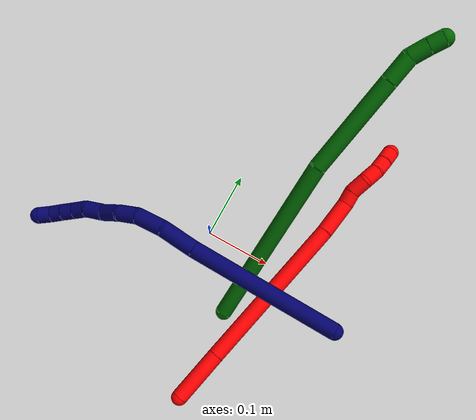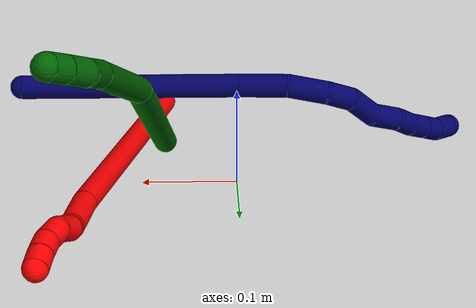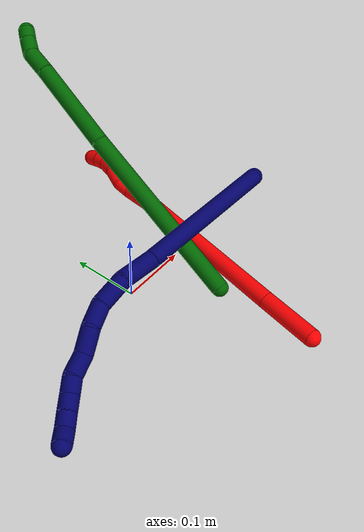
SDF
<sdf version="1.7">
 <world name="default">
  <model name="photoneo_s_sensor">
   <static>1</static>
   <pose>0 0 2 1.57079 1.57079 3.14159</pose>
   <link name="link">
    <inertial><mass>0.1</mass></inertial>
    <sensor name="sensor" type="depth">
     <update_rate>30</update_rate>
     <camera>
      <horizontal_fov>1.22</horizontal_fov>
      <image><width>1920</width><height>1200</height><format>B8G8R8</format></image>
      <clip><near>0.1</near><far>4</far></clip>
      <depth_camera><output>points</output></depth_camera>
     </camera>
     <plugin name="camera_plugin" filename="libgazebo_ros_depth_camera.so">
      <baseline>0.2</baseline>
      <alwaysOn>1</alwaysOn>
      <updateRate>0.0</updateRate>
      <cameraName>camera_ir</cameraName>
      <imageTopicName>/camera/color/image_raw</imageTopicName>
      <cameraInfoTopicName>/camera/color/camera_info</cameraInfoTopicName>
      <depthImageTopicName>/camera/depth/image_raw</depthImageTopicName>
      <depthImageCameraInfoTopicName>/camera/depth/camera_info</depthImageCameraInfoTopicName>
      <pointCloudTopicName>/camera/depth/points</pointCloudTopicName>
      <frameName>fr_optical</frameName>
      <pointCloudCutoff>0.1</pointCloudCutoff>
      <pointCloudCutoffMax>2.0</pointCloudCutoffMax>
      <distortionK1>0</distortionK1>
      <distortionK2>0</distortionK2>
      <distortionK3>0</distortionK3>
      <distortionT1>0</distortionT1>
      <distortionT2>0</distortionT2>
      <CxPrime>0</CxPrime>
      <Cx>0</Cx>
      <Cy>0</Cy>
      <focalLength>0</focalLength>
      <hackBaseline>0</hackBaseline>
     </plugin>
    </sensor>
   </link>
  </model>
  <model name="bin">
   <static>1</static>
   <link name="bottom">
    <collision name="collision-bottom">
     <pose>0 0 -0.01 0 -0 0</pose>
     <geometry><box><size>0.8 0.6 0.02</size></box></geometry>
     <surface>
      <friction><ode><mu>100</mu><mu2>100</mu2></ode></friction>
      <contact><collide_bitmask>65535</collide_bitmask></contact>
     </surface>
    </collision>
   </link>
   <link name="west_wall">
    <collision name="collision-west_wall">
     <pose>-0.41 0 0.1 0 -0 0</pose>
     <geometry><box><size>0.02 0.6 0.2</size></box></geometry>
     <surface>
      <friction><ode><mu>100</mu><mu2>100</mu2></ode></friction>
      <contact><collide_bitmask>65535</collide_bitmask></contact>
     </surface>
    </collision>
   </link>
   <link name="east_wall">
    <collision name="collision-east_wall">
     <pose>0.41 0 0.1 0 -0 0</pose>
     <geometry><box><size>0.02 0.6 0.2</size></box></geometry>
     <surface>
      <friction><ode><mu>100</mu><mu2>100</mu2></ode></friction>
      <contact><collide_bitmask>65535</collide_bitmask></contact>
     </surface>
    </collision>
   </link>
   <link name="south_wall">
    <collision name="collision-south_wall">
     <pose>0 -0.31 0.1 0 -0 0</pose>
     <geometry><box><size>0.8 0.02 0.2</size></box></geometry>
     <surface>
      <friction><ode><mu>100</mu><mu2>100</mu2></ode></friction>
      <contact><collide_bitmask>65535</collide_bitmask></contact>
     </surface>
    </collision>
   </link>
   <link name="north_wall">
    <collision name="collision-north_wall">
     <pose>0 0.31 0.1 0 -0 0</pose>
     <geometry><box><size>0.8 0.02 0.2</size></box></geometry>
     <surface>
      <friction><ode><mu>100</mu><mu2>100</mu2></ode></friction>
      <contact><collide_bitmask>65535</collide_bitmask></contact>
     </surface>
    </collision>
   </link>
  </model>
  <model name="2">
   <static>0</static>
   <link name="2">
    <collision name="collision-cylinder-e_1_1_4">
     <pose>0.009067 0.040051 0.004728 -1.45329 0.22114 -0.196739</pose>
     <geometry><cylinder><radius>0.0125</radius><length>0.082672</length></cylinder></geometry>
     <surface>
      <friction><ode><mu>1.16</mu><mu2>1.16</mu2><slip1>0</slip1><slip2>0</slip2></ode></friction>
      <contact><ode><kp>1e+06</kp><kd>1</kd><max_vel>0</max_vel><min_depth>0.001</min_depth></ode></contact>
     </surface>
    </collision>
    <visual name="visual-cylinder-e_1_1_4">
     <pose>0.009067 0.040051 0.004728 -1.45329 0.22114 -0.196739</pose>
     <geometry><cylinder><radius>0.0125</radius><length>0.082672</length></cylinder></geometry>
     <material><ambient>1 0 0 1</ambient></material>
    </visual>
    <collision name="collision-cylinder-e_2_4_5">
     <pose>0.046518 0.201089 0.024256 -1.44907 0.228798 -0.202706</pose>
     <geometry><cylinder><radius>0.0125</radius><length>0.250301</length></cylinder></geometry>
     <surface>
      <friction><ode><mu>1.16</mu><mu2>1.16</mu2><slip1>0</slip1><slip2>0</slip2></ode></friction>
      <contact><ode><kp>1e+06</kp><kd>1</kd><max_vel>0</max_vel><min_depth>0.001</min_depth></ode></contact>
     </surface>
    </collision>
    <visual name="visual-cylinder-e_2_4_5">
     <pose>0.046518 0.201089 0.024256 -1.44907 0.228798 -0.202706</pose>
     <geometry><cylinder><radius>0.0125</radius><length>0.250301</length></cylinder></geometry>
     <material><ambient>1 0 0 1</ambient></material>
    </visual>
    <collision name="collision-cylinder-e_3_5_6">
     <pose>0.07938 0.349285 0.040847 -1.50508 0.162727 -0.152411</pose>
     <geometry><cylinder><radius>0.0125</radius><length>0.055265</length></cylinder></geometry>
     <surface>
      <friction><ode><mu>1.16</mu><mu2>1.16</mu2><slip1>0</slip1><slip2>0</slip2></ode></friction>
      <contact><ode><kp>1e+06</kp><kd>1</kd><max_vel>0</max_vel><min_depth>0.001</min_depth></ode></contact>
     </surface>
    </collision>
    <visual name="visual-cylinder-e_3_5_6">
     <pose>0.07938 0.349285 0.040847 -1.50508 0.162727 -0.152411</pose>
     <geometry><cylinder><radius>0.0125</radius><length>0.055265</length></cylinder></geometry>
     <material><ambient>1 0 0 1</ambient></material>
    </visual>
    <collision name="collision-cylinder-e_4_6_7">
     <pose>0.083411 0.386434 0.046717 -1.18136 -0.041423 0.027778</pose>
     <geometry><cylinder><radius>0.0125</radius><length>0.021508</length></cylinder></geometry>
     <surface>
      <friction><ode><mu>1.16</mu><mu2>1.16</mu2><slip1>0</slip1><slip2>0</slip2></ode></friction>
      <contact><ode><kp>1e+06</kp><kd>1</kd><max_vel>0</max_vel><min_depth>0.001</min_depth></ode></contact>
     </surface>
    </collision>
    <visual name="visual-cylinder-e_4_6_7">
     <pose>0.083411 0.386434 0.046717 -1.18136 -0.041423 0.027778</pose>
     <geometry><cylinder><radius>0.0125</radius><length>0.021508</length></cylinder></geometry>
     <material><ambient>1 0 0 1</ambient></material>
    </visual>
    <collision name="collision-cylinder-e_5_7_8">
     <pose>0.086671 0.407433 0.056881 -1.06785 0.285488 -0.16953</pose>
     <geometry><cylinder><radius>0.0125</radius><length>0.026309</length></cylinder></geometry>
     <surface>
      <friction><ode><mu>1.16</mu><mu2>1.16</mu2><slip1>0</slip1><slip2>0</slip2></ode></friction>
      <contact><ode><kp>1e+06</kp><kd>1</kd><max_vel>0</max_vel><min_depth>0.001</min_depth></ode></contact>
     </surface>
    </collision>
    <visual name="visual-cylinder-e_5_7_8">
     <pose>0.086671 0.407433 0.056881 -1.06785 0.285488 -0.16953</pose>
     <geometry><cylinder><radius>0.0125</radius><length>0.026309</length></cylinder></geometry>
     <material><ambient>1 0 0 1</ambient></material>
    </visual>
    <collision name="collision-cylinder-e_6_8_9">
     <pose>0.09471 0.429474 0.063514 -1.52083 0.375526 -0.357615</pose>
     <geometry><cylinder><radius>0.0125</radius><length>0.023639</length></cylinder></geometry>
     <surface>
      <friction><ode><mu>1.16</mu><mu2>1.16</mu2><slip1>0</slip1><slip2>0</slip2></ode></friction>
      <contact><ode><kp>1e+06</kp><kd>1</kd><max_vel>0</max_vel><min_depth>0.001</min_depth></ode></contact>
     </surface>
    </collision>
    <visual name="visual-cylinder-e_6_8_9">
     <pose>0.09471 0.429474 0.063514 -1.52083 0.375526 -0.357615</pose>
     <geometry><cylinder><radius>0.0125</radius><length>0.023639</length></cylinder></geometry>
     <material><ambient>1 0 0 1</ambient></material>
    </visual>
    <collision name="collision-cylinder-e_7_9_10">
     <pose>0.101258 0.45027 0.063094 -1.66923 0.220751 -0.24341</pose>
     <geometry><cylinder><radius>0.0125</radius><length>0.020214</length></cylinder></geometry>
     <surface>
      <friction><ode><mu>1.16</mu><mu2>1.16</mu2><slip1>0</slip1><slip2>0</slip2></ode></friction>
      <contact><ode><kp>1e+06</kp><kd>1</kd><max_vel>0</max_vel><min_depth>0.001</min_depth></ode></contact>
     </surface>
    </collision>
    <visual name="visual-cylinder-e_7_9_10">
     <pose>0.101258 0.45027 0.063094 -1.66923 0.220751 -0.24341</pose>
     <geometry><cylinder><radius>0.0125</radius><length>0.020214</length></cylinder></geometry>
     <material><ambient>1 0 0 1</ambient></material>
    </visual>
    <collision name="collision-cylinder-e_8_10_2">
     <pose>0.105482 0.469734 0.060185 -1.76914 0.201485 -0.245602</pose>
     <geometry><cylinder><radius>0.0125</radius><length>0.020093</length></cylinder></geometry>
     <surface>
      <friction><ode><mu>1.16</mu><mu2>1.16</mu2><slip1>0</slip1><slip2>0</slip2></ode></friction>
      <contact><ode><kp>1e+06</kp><kd>1</kd><max_vel>0</max_vel><min_depth>0.001</min_depth></ode></contact>
     </surface>
    </collision>
    <visual name="visual-cylinder-e_8_10_2">
     <pose>0.105482 0.469734 0.060185 -1.76914 0.201485 -0.245602</pose>
     <geometry><cylinder><radius>0.0125</radius><length>0.020093</length></cylinder></geometry>
     <material><ambient>1 0 0 1</ambient></material>
    </visual>
    <collision name="collision-sphere-2">
     <pose>0.107492 0.479385 0.058245 0 -0 0</pose>
     <geometry><sphere><radius>0.0125</radius></sphere></geometry>
     <surface>
      <friction><ode><mu>1.16</mu><mu2>1.16</mu2><slip1>0</slip1><slip2>0</slip2></ode></friction>
      <contact><ode><kp>1e+06</kp><kd>1</kd><max_vel>0</max_vel><min_depth>0.001</min_depth></ode></contact>
     </surface>
    </collision>
    <visual name="visual-sphere-2">
     <pose>0.107492 0.479385 0.058245 0 -0 0</pose>
     <geometry><sphere><radius>0.0125</radius></sphere></geometry>
     <material><ambient>1 0 0 1</ambient></material>
    </visual>
    <collision name="collision-sphere-10">
     <pose>0.103471 0.460084 0.062124 0 -0 0</pose>
     <geometry><sphere><radius>0.0125</radius></sphere></geometry>
     <surface>
      <friction><ode><mu>1.16</mu><mu2>1.16</mu2><slip1>0</slip1><slip2>0</slip2></ode></friction>
      <contact><ode><kp>1e+06</kp><kd>1</kd><max_vel>0</max_vel><min_depth>0.001</min_depth></ode></contact>
     </surface>
    </collision>
    <visual name="visual-sphere-10">
     <pose>0.103471 0.460084 0.062124 0 -0 0</pose>
     <geometry><sphere><radius>0.0125</radius></sphere></geometry>
     <material><ambient>1 0 0 1</ambient></material>
    </visual>
    <collision name="collision-sphere-9">
     <pose>0.099045 0.440456 0.064063 0 -0 0</pose>
     <geometry><sphere><radius>0.0125</radius></sphere></geometry>
     <surface>
      <friction><ode><mu>1.16</mu><mu2>1.16</mu2><slip1>0</slip1><slip2>0</slip2></ode></friction>
      <contact><ode><kp>1e+06</kp><kd>1</kd><max_vel>0</max_vel><min_depth>0.001</min_depth></ode></contact>
     </surface>
    </collision>
    <visual name="visual-sphere-9">
     <pose>0.099045 0.440456 0.064063 0 -0 0</pose>
     <geometry><sphere><radius>0.0125</radius></sphere></geometry>
     <material><ambient>1 0 0 1</ambient></material>
    </visual>
    <collision name="collision-sphere-4">
     <pose>0.018133 0.080102 0.009456 0 -0 0</pose>
     <geometry><sphere><radius>0.0125</radius></sphere></geometry>
     <surface>
      <friction><ode><mu>1.16</mu><mu2>1.16</mu2><slip1>0</slip1><slip2>0</slip2></ode></friction>
      <contact><ode><kp>1e+06</kp><kd>1</kd><max_vel>0</max_vel><min_depth>0.001</min_depth></ode></contact>
     </surface>
    </collision>
    <visual name="visual-sphere-4">
     <pose>0.018133 0.080102 0.009456 0 -0 0</pose>
     <geometry><sphere><radius>0.0125</radius></sphere></geometry>
     <material><ambient>1 0 0 1</ambient></material>
    </visual>
    <collision name="collision-sphere-1">
     <geometry><sphere><radius>0.0125</radius></sphere></geometry>
     <surface>
      <friction><ode><mu>1.16</mu><mu2>1.16</mu2><slip1>0</slip1><slip2>0</slip2></ode></friction>
      <contact><ode><kp>1e+06</kp><kd>1</kd><max_vel>0</max_vel><min_depth>0.001</min_depth></ode></contact>
     </surface>
    </collision>
    <visual name="visual-sphere-1">
     <geometry><sphere><radius>0.0125</radius></sphere></geometry>
     <material><ambient>1 0 0 1</ambient></material>
    </visual>
    <collision name="collision-sphere-8">
     <pose>0.090375 0.418492 0.062965 0 -0 0</pose>
     <geometry><sphere><radius>0.0125</radius></sphere></geometry>
     <surface>
      <friction><ode><mu>1.16</mu><mu2>1.16</mu2><slip1>0</slip1><slip2>0</slip2></ode></friction>
      <contact><ode><kp>1e+06</kp><kd>1</kd><max_vel>0</max_vel><min_depth>0.001</min_depth></ode></contact>
     </surface>
    </collision>
    <visual name="visual-sphere-8">
     <pose>0.090375 0.418492 0.062965 0 -0 0</pose>
     <geometry><sphere><radius>0.0125</radius></sphere></geometry>
     <material><ambient>1 0 0 1</ambient></material>
    </visual>
    <collision name="collision-sphere-5">
     <pose>0.074903 0.322076 0.039057 0 -0 0</pose>
     <geometry><sphere><radius>0.0125</radius></sphere></geometry>
     <surface>
      <friction><ode><mu>1.16</mu><mu2>1.16</mu2><slip1>0</slip1><slip2>0</slip2></ode></friction>
      <contact><ode><kp>1e+06</kp><kd>1</kd><max_vel>0</max_vel><min_depth>0.001</min_depth></ode></contact>
     </surface>
    </collision>
    <visual name="visual-sphere-5">
     <pose>0.074903 0.322076 0.039057 0 -0 0</pose>
     <geometry><sphere><radius>0.0125</radius></sphere></geometry>
     <material><ambient>1 0 0 1</ambient></material>
    </visual>
    <collision name="collision-sphere-6">
     <pose>0.083857 0.376493 0.042638 0 -0 0</pose>
     <geometry><sphere><radius>0.0125</radius></sphere></geometry>
     <surface>
      <friction><ode><mu>1.16</mu><mu2>1.16</mu2><slip1>0</slip1><slip2>0</slip2></ode></friction>
      <contact><ode><kp>1e+06</kp><kd>1</kd><max_vel>0</max_vel><min_depth>0.001</min_depth></ode></contact>
     </surface>
    </collision>
    <visual name="visual-sphere-6">
     <pose>0.083857 0.376493 0.042638 0 -0 0</pose>
     <geometry><sphere><radius>0.0125</radius></sphere></geometry>
     <material><ambient>1 0 0 1</ambient></material>
    </visual>
    <collision name="collision-sphere-7">
     <pose>0.082966 0.396374 0.050797 0 -0 0</pose>
     <geometry><sphere><radius>0.0125</radius></sphere></geometry>
     <surface>
      <friction><ode><mu>1.16</mu><mu2>1.16</mu2><slip1>0</slip1><slip2>0</slip2></ode></friction>
      <contact><ode><kp>1e+06</kp><kd>1</kd><max_vel>0</max_vel><min_depth>0.001</min_depth></ode></contact>
     </surface>
    </collision>
    <visual name="visual-sphere-7">
     <pose>0.082966 0.396374 0.050797 0 -0 0</pose>
     <geometry><sphere><radius>0.0125</radius></sphere></geometry>
     <material><ambient>1 0 0 1</ambient></material>
    </visual>
    <inertial>
     <pose>0.054519 0.24134 0.030414 0 -0 0</pose>
     <mass>0.5</mass>
     <inertia>
      <ixx>0.001065</ixx>
      <ixy>0</ixy>
      <ixz>0</ixz>
      <iyy>-7e-06</iyy>
      <iyz>0</iyz>
      <izz>-0.001656</izz>
     </inertia>
    </inertial>
   </link>
   <pose>0.080801 -0.238747 0.011498 -0.079346 0.14991 0.00954</pose>
  </model>
  <model name="6">
   <static>0</static>
   <link name="6">
    <collision name="collision-cylinder-e_1_1_4">
     <pose>0.027621 0.050304 0.121241 -0.393296 0.207398 -0.041461</pose>
     <geometry><cylinder><radius>0.0125</radius><length>0.268274</length></cylinder></geometry>
     <surface>
      <friction><ode><mu>1.16</mu><mu2>1.16</mu2><slip1>0</slip1><slip2>0</slip2></ode></friction>
      <contact><ode><kp>1e+06</kp><kd>1</kd><max_vel>0</max_vel><min_depth>0.001</min_depth></ode></contact>
     </surface>
    </collision>
    <visual name="visual-cylinder-e_1_1_4">
     <pose>0.027621 0.050304 0.121241 -0.393296 0.207398 -0.041461</pose>
     <geometry><cylinder><radius>0.0125</radius><length>0.268274</length></cylinder></geometry>
     <material><ambient>0 0.392157 0.003922 1</ambient></material>
    </visual>
    <collision name="collision-cylinder-e_2_4_5">
     <pose>0.07468 0.137338 0.3014 -0.557449 0.272984 -0.078569</pose>
     <geometry><cylinder><radius>0.0125</radius><length>0.144197</length></cylinder></geometry>
     <surface>
      <friction><ode><mu>1.16</mu><mu2>1.16</mu2><slip1>0</slip1><slip2>0</slip2></ode></friction>
      <contact><ode><kp>1e+06</kp><kd>1</kd><max_vel>0</max_vel><min_depth>0.001</min_depth></ode></contact>
     </surface>
    </collision>
    <visual name="visual-cylinder-e_2_4_5">
     <pose>0.07468 0.137338 0.3014 -0.557449 0.272984 -0.078569</pose>
     <geometry><cylinder><radius>0.0125</radius><length>0.144197</length></cylinder></geometry>
     <material><ambient>0 0.392157 0.003922 1</ambient></material>
    </visual>
    <collision name="collision-cylinder-e_3_5_6">
     <pose>0.098974 0.185262 0.375696 -0.629211 0.249929 -0.081711</pose>
     <geometry><cylinder><radius>0.0125</radius><length>0.039264</length></cylinder></geometry>
     <surface>
      <friction><ode><mu>1.16</mu><mu2>1.16</mu2><slip1>0</slip1><slip2>0</slip2></ode></friction>
      <contact><ode><kp>1e+06</kp><kd>1</kd><max_vel>0</max_vel><min_depth>0.001</min_depth></ode></contact>
     </surface>
    </collision>
    <visual name="visual-cylinder-e_3_5_6">
     <pose>0.098974 0.185262 0.375696 -0.629211 0.249929 -0.081711</pose>
     <geometry><cylinder><radius>0.0125</radius><length>0.039264</length></cylinder></geometry>
     <material><ambient>0 0.392157 0.003922 1</ambient></material>
    </visual>
    <collision name="collision-cylinder-e_4_6_7">
     <pose>0.11171 0.20378 0.399226 -0.732001 0.623556 -0.245802</pose>
     <geometry><cylinder><radius>0.0125</radius><length>0.026994</length></cylinder></geometry>
     <surface>
      <friction><ode><mu>1.16</mu><mu2>1.16</mu2><slip1>0</slip1><slip2>0</slip2></ode></friction>
      <contact><ode><kp>1e+06</kp><kd>1</kd><max_vel>0</max_vel><min_depth>0.001</min_depth></ode></contact>
     </surface>
    </collision>
    <visual name="visual-cylinder-e_4_6_7">
     <pose>0.11171 0.20378 0.399226 -0.732001 0.623556 -0.245802</pose>
     <geometry><cylinder><radius>0.0125</radius><length>0.026994</length></cylinder></geometry>
     <material><ambient>0 0.392157 0.003922 1</ambient></material>
    </visual>
    <collision name="collision-cylinder-e_5_7_2">
     <pose>0.126204 0.216896 0.413363 -0.768924 0.670889 -0.280251</pose>
     <geometry><cylinder><radius>0.0125</radius><length>0.021271</length></cylinder></geometry>
     <surface>
      <friction><ode><mu>1.16</mu><mu2>1.16</mu2><slip1>0</slip1><slip2>0</slip2></ode></friction>
      <contact><ode><kp>1e+06</kp><kd>1</kd><max_vel>0</max_vel><min_depth>0.001</min_depth></ode></contact>
     </surface>
    </collision>
    <visual name="visual-cylinder-e_5_7_2">
     <pose>0.126204 0.216896 0.413363 -0.768924 0.670889 -0.280251</pose>
     <geometry><cylinder><radius>0.0125</radius><length>0.021271</length></cylinder></geometry>
     <material><ambient>0 0.392157 0.003922 1</ambient></material>
    </visual>
    <collision name="collision-sphere-2">
     <pose>0.132815 0.222688 0.419349 0 -0 0</pose>
     <geometry><sphere><radius>0.0125</radius></sphere></geometry>
     <surface>
      <friction><ode><mu>1.16</mu><mu2>1.16</mu2><slip1>0</slip1><slip2>0</slip2></ode></friction>
      <contact><ode><kp>1e+06</kp><kd>1</kd><max_vel>0</max_vel><min_depth>0.001</min_depth></ode></contact>
     </surface>
    </collision>
    <visual name="visual-sphere-2">
     <pose>0.132815 0.222688 0.419349 0 -0 0</pose>
     <geometry><sphere><radius>0.0125</radius></sphere></geometry>
     <material><ambient>0 0.392157 0.003922 1</ambient></material>
    </visual>
    <collision name="collision-sphere-7">
     <pose>0.119592 0.211103 0.407376 0 -0 0</pose>
     <geometry><sphere><radius>0.0125</radius></sphere></geometry>
     <surface>
      <friction><ode><mu>1.16</mu><mu2>1.16</mu2><slip1>0</slip1><slip2>0</slip2></ode></friction>
      <contact><ode><kp>1e+06</kp><kd>1</kd><max_vel>0</max_vel><min_depth>0.001</min_depth></ode></contact>
     </surface>
    </collision>
    <visual name="visual-sphere-7">
     <pose>0.119592 0.211103 0.407376 0 -0 0</pose>
     <geometry><sphere><radius>0.0125</radius></sphere></geometry>
     <material><ambient>0 0.392157 0.003922 1</ambient></material>
    </visual>
    <collision name="collision-sphere-6">
     <pose>0.103829 0.196457 0.391076 0 -0 0</pose>
     <geometry><sphere><radius>0.0125</radius></sphere></geometry>
     <surface>
      <friction><ode><mu>1.16</mu><mu2>1.16</mu2><slip1>0</slip1><slip2>0</slip2></ode></friction>
      <contact><ode><kp>1e+06</kp><kd>1</kd><max_vel>0</max_vel><min_depth>0.001</min_depth></ode></contact>
     </surface>
    </collision>
    <visual name="visual-sphere-6">
     <pose>0.103829 0.196457 0.391076 0 -0 0</pose>
     <geometry><sphere><radius>0.0125</radius></sphere></geometry>
     <material><ambient>0 0.392157 0.003922 1</ambient></material>
    </visual>
    <collision name="collision-sphere-5">
     <pose>0.094118 0.174068 0.360317 0 -0 0</pose>
     <geometry><sphere><radius>0.0125</radius></sphere></geometry>
     <surface>
      <friction><ode><mu>1.16</mu><mu2>1.16</mu2><slip1>0</slip1><slip2>0</slip2></ode></friction>
      <contact><ode><kp>1e+06</kp><kd>1</kd><max_vel>0</max_vel><min_depth>0.001</min_depth></ode></contact>
     </surface>
    </collision>
    <visual name="visual-sphere-5">
     <pose>0.094118 0.174068 0.360317 0 -0 0</pose>
     <geometry><sphere><radius>0.0125</radius></sphere></geometry>
     <material><ambient>0 0.392157 0.003922 1</ambient></material>
    </visual>
    <collision name="collision-sphere-1">
     <geometry><sphere><radius>0.0125</radius></sphere></geometry>
     <surface>
      <friction><ode><mu>1.16</mu><mu2>1.16</mu2><slip1>0</slip1><slip2>0</slip2></ode></friction>
      <contact><ode><kp>1e+06</kp><kd>1</kd><max_vel>0</max_vel><min_depth>0.001</min_depth></ode></contact>
     </surface>
    </collision>
    <visual name="visual-sphere-1">
     <geometry><sphere><radius>0.0125</radius></sphere></geometry>
     <material><ambient>0 0.392157 0.003922 1</ambient></material>
    </visual>
    <collision name="collision-sphere-4">
     <pose>0.055242 0.100609 0.242482 0 -0 0</pose>
     <geometry><sphere><radius>0.0125</radius></sphere></geometry>
     <surface>
      <friction><ode><mu>1.16</mu><mu2>1.16</mu2><slip1>0</slip1><slip2>0</slip2></ode></friction>
      <contact><ode><kp>1e+06</kp><kd>1</kd><max_vel>0</max_vel><min_depth>0.001</min_depth></ode></contact>
     </surface>
    </collision>
    <visual name="visual-sphere-4">
     <pose>0.055242 0.100609 0.242482 0 -0 0</pose>
     <geometry><sphere><radius>0.0125</radius></sphere></geometry>
     <material><ambient>0 0.392157 0.003922 1</ambient></material>
    </visual>
    <inertial>
     <pose>0.055529 0.101375 0.220614 0 -0 0</pose>
     <mass>0.5</mass>
     <inertia>
      <ixx>0.001762</ixx>
      <ixy>0</ixy>
      <ixz>0</ixz>
      <iyy>0.001659</iyy>
      <iyz>0</iyz>
      <izz>-0.001117</izz>
     </inertia>
    </inertial>
   </link>
   <pose>0.077116 -0.095205 0.012161 -0.693471 -0.404189 -0.064555</pose>
  </model>
  <model name="7">
   <static>0</static>
   <link name="7">
    <collision name="collision-cylinder-e_1_1_4">
     <pose>-0.114625 0.004489 -0.002103 -2.00895 -1.52758 1.96945</pose>
     <geometry><cylinder><radius>0.0125</radius><length>0.229464</length></cylinder></geometry>
     <surface>
      <friction><ode><mu>1.16</mu><mu2>1.16</mu2><slip1>0</slip1><slip2>0</slip2></ode></friction>
      <contact><ode><kp>1e+06</kp><kd>1</kd><max_vel>0</max_vel><min_depth>0.001</min_depth></ode></contact>
     </surface>
    </collision>
    <visual name="visual-cylinder-e_1_1_4">
     <pose>-0.114625 0.004489 -0.002103 -2.00895 -1.52758 1.96945</pose>
     <geometry><cylinder><radius>0.0125</radius><length>0.229464</length></cylinder></geometry>
     <material><ambient>0.003922 0 0.403922 1</ambient></material>
    </visual>
    <collision name="collision-cylinder-e_2_4_5">
     <pose>-0.255031 0.01164 -0.004717 -1.76039 -1.46601 1.65645</pose>
     <geometry><cylinder><radius>0.0125</radius><length>0.051848</length></cylinder></geometry>
     <surface>
      <friction><ode><mu>1.16</mu><mu2>1.16</mu2><slip1>0</slip1><slip2>0</slip2></ode></friction>
      <contact><ode><kp>1e+06</kp><kd>1</kd><max_vel>0</max_vel><min_depth>0.001</min_depth></ode></contact>
     </surface>
    </collision>
    <visual name="visual-cylinder-e_2_4_5">
     <pose>-0.255031 0.01164 -0.004717 -1.76039 -1.46601 1.65645</pose>
     <geometry><cylinder><radius>0.0125</radius><length>0.051848</length></cylinder></geometry>
     <material><ambient>0.003922 0 0.403922 1</ambient></material>
    </visual>
    <collision name="collision-cylinder-e_3_5_6">
     <pose>-0.301822 0.013477 -0.009869 2.96538 -1.35007 -2.92178</pose>
     <geometry><cylinder><radius>0.0125</radius><length>0.043064</length></cylinder></geometry>
     <surface>
      <friction><ode><mu>1.16</mu><mu2>1.16</mu2><slip1>0</slip1><slip2>0</slip2></ode></friction>
      <contact><ode><kp>1e+06</kp><kd>1</kd><max_vel>0</max_vel><min_depth>0.001</min_depth></ode></contact>
     </surface>
    </collision>
    <visual name="visual-cylinder-e_3_5_6">
     <pose>-0.301822 0.013477 -0.009869 2.96538 -1.35007 -2.92178</pose>
     <geometry><cylinder><radius>0.0125</radius><length>0.043064</length></cylinder></geometry>
     <material><ambient>0.003922 0 0.403922 1</ambient></material>
    </visual>
    <collision name="collision-cylinder-e_4_6_7">
     <pose>-0.336463 0.007858 -0.019206 2.34596 -1.11341 -1.95381</pose>
     <geometry><cylinder><radius>0.0125</radius><length>0.030385</length></cylinder></geometry>
     <surface>
      <friction><ode><mu>1.16</mu><mu2>1.16</mu2><slip1>0</slip1><slip2>0</slip2></ode></friction>
      <contact><ode><kp>1e+06</kp><kd>1</kd><max_vel>0</max_vel><min_depth>0.001</min_depth></ode></contact>
     </surface>
    </collision>
    <visual name="visual-cylinder-e_4_6_7">
     <pose>-0.336463 0.007858 -0.019206 2.34596 -1.11341 -1.95381</pose>
     <geometry><cylinder><radius>0.0125</radius><length>0.030385</length></cylinder></geometry>
     <material><ambient>0.003922 0 0.403922 1</ambient></material>
    </visual>
    <collision name="collision-cylinder-e_5_7_8">
     <pose>-0.362384 -0.002837 -0.033956 2.61075 -0.811768 -2.01358</pose>
     <geometry><cylinder><radius>0.0125</radius><length>0.033882</length></cylinder></geometry>
     <surface>
      <friction><ode><mu>1.16</mu><mu2>1.16</mu2><slip1>0</slip1><slip2>0</slip2></ode></friction>
      <contact><ode><kp>1e+06</kp><kd>1</kd><max_vel>0</max_vel><min_depth>0.001</min_depth></ode></contact>
     </surface>
    </collision>
    <visual name="visual-cylinder-e_5_7_8">
     <pose>-0.362384 -0.002837 -0.033956 2.61075 -0.811768 -2.01358</pose>
     <geometry><cylinder><radius>0.0125</radius><length>0.033882</length></cylinder></geometry>
     <material><ambient>0.003922 0 0.403922 1</ambient></material>
    </visual>
    <collision name="collision-cylinder-e_6_8_9">
     <pose>-0.388374 -0.012934 -0.04748 2.26184 -1.19254 -1.92895</pose>
     <geometry><cylinder><radius>0.0125</radius><length>0.029481</length></cylinder></geometry>
     <surface>
      <friction><ode><mu>1.16</mu><mu2>1.16</mu2><slip1>0</slip1><slip2>0</slip2></ode></friction>
      <contact><ode><kp>1e+06</kp><kd>1</kd><max_vel>0</max_vel><min_depth>0.001</min_depth></ode></contact>
     </surface>
    </collision>
    <visual name="visual-cylinder-e_6_8_9">
     <pose>-0.388374 -0.012934 -0.04748 2.26184 -1.19254 -1.92895</pose>
     <geometry><cylinder><radius>0.0125</radius><length>0.029481</length></cylinder></geometry>
     <material><ambient>0.003922 0 0.403922 1</ambient></material>
    </visual>
    <collision name="collision-cylinder-e_7_9_10">
     <pose>-0.40998 -0.022639 -0.055167 2.22418 -0.850544 -1.48439</pose>
     <geometry><cylinder><radius>0.0125</radius><length>0.021042</length></cylinder></geometry>
     <surface>
      <friction><ode><mu>1.16</mu><mu2>1.16</mu2><slip1>0</slip1><slip2>0</slip2></ode></friction>
      <contact><ode><kp>1e+06</kp><kd>1</kd><max_vel>0</max_vel><min_depth>0.001</min_depth></ode></contact>
     </surface>
    </collision>
    <visual name="visual-cylinder-e_7_9_10">
     <pose>-0.40998 -0.022639 -0.055167 2.22418 -0.850544 -1.48439</pose>
     <geometry><cylinder><radius>0.0125</radius><length>0.021042</length></cylinder></geometry>
     <material><ambient>0.003922 0 0.403922 1</ambient></material>
    </visual>
    <collision name="collision-cylinder-e_8_10_11">
     <pose>-0.42598 -0.033761 -0.062028 2.0108 -0.91677 -1.32198</pose>
     <geometry><cylinder><radius>0.0125</radius><length>0.020391</length></cylinder></geometry>
     <surface>
      <friction><ode><mu>1.16</mu><mu2>1.16</mu2><slip1>0</slip1><slip2>0</slip2></ode></friction>
      <contact><ode><kp>1e+06</kp><kd>1</kd><max_vel>0</max_vel><min_depth>0.001</min_depth></ode></contact>
     </surface>
    </collision>
    <visual name="visual-cylinder-e_8_10_11">
     <pose>-0.42598 -0.033761 -0.062028 2.0108 -0.91677 -1.32198</pose>
     <geometry><cylinder><radius>0.0125</radius><length>0.020391</length></cylinder></geometry>
     <material><ambient>0.003922 0 0.403922 1</ambient></material>
    </visual>
    <collision name="collision-cylinder-e_9_11_12">
     <pose>-0.44199 -0.04509 -0.067399 2.01625 -0.896057 -1.30237</pose>
     <geometry><cylinder><radius>0.0125</radius><length>0.020281</length></cylinder></geometry>
     <surface>
      <friction><ode><mu>1.16</mu><mu2>1.16</mu2><slip1>0</slip1><slip2>0</slip2></ode></friction>
      <contact><ode><kp>1e+06</kp><kd>1</kd><max_vel>0</max_vel><min_depth>0.001</min_depth></ode></contact>
     </surface>
    </collision>
    <visual name="visual-cylinder-e_9_11_12">
     <pose>-0.44199 -0.04509 -0.067399 2.01625 -0.896057 -1.30237</pose>
     <geometry><cylinder><radius>0.0125</radius><length>0.020281</length></cylinder></geometry>
     <material><ambient>0.003922 0 0.403922 1</ambient></material>
    </visual>
    <collision name="collision-cylinder-e_10_12_2">
     <pose>-0.458233 -0.056445 -0.069392 1.44086 -0.971491 -0.867946</pose>
     <geometry><cylinder><radius>0.0125</radius><length>0.020162</length></cylinder></geometry>
     <surface>
      <friction><ode><mu>1.16</mu><mu2>1.16</mu2><slip1>0</slip1><slip2>0</slip2></ode></friction>
      <contact><ode><kp>1e+06</kp><kd>1</kd><max_vel>0</max_vel><min_depth>0.001</min_depth></ode></contact>
     </surface>
    </collision>
    <visual name="visual-cylinder-e_10_12_2">
     <pose>-0.458233 -0.056445 -0.069392 1.44086 -0.971491 -0.867946</pose>
     <geometry><cylinder><radius>0.0125</radius><length>0.020162</length></cylinder></geometry>
     <material><ambient>0.003922 0 0.403922 1</ambient></material>
    </visual>
    <collision name="collision-sphere-2">
     <pose>-0.466557 -0.062083 -0.068655 0 -0 0</pose>
     <geometry><sphere><radius>0.0125</radius></sphere></geometry>
     <surface>
      <friction><ode><mu>1.16</mu><mu2>1.16</mu2><slip1>0</slip1><slip2>0</slip2></ode></friction>
      <contact><ode><kp>1e+06</kp><kd>1</kd><max_vel>0</max_vel><min_depth>0.001</min_depth></ode></contact>
     </surface>
    </collision>
    <visual name="visual-sphere-2">
     <pose>-0.466557 -0.062083 -0.068655 0 -0 0</pose>
     <geometry><sphere><radius>0.0125</radius></sphere></geometry>
     <material><ambient>0.003922 0 0.403922 1</ambient></material>
    </visual>
    <collision name="collision-sphere-12">
     <pose>-0.449908 -0.050806 -0.070129 0 -0 0</pose>
     <geometry><sphere><radius>0.0125</radius></sphere></geometry>
     <surface>
      <friction><ode><mu>1.16</mu><mu2>1.16</mu2><slip1>0</slip1><slip2>0</slip2></ode></friction>
      <contact><ode><kp>1e+06</kp><kd>1</kd><max_vel>0</max_vel><min_depth>0.001</min_depth></ode></contact>
     </surface>
    </collision>
    <visual name="visual-sphere-12">
     <pose>-0.449908 -0.050806 -0.070129 0 -0 0</pose>
     <geometry><sphere><radius>0.0125</radius></sphere></geometry>
     <material><ambient>0.003922 0 0.403922 1</ambient></material>
    </visual>
    <collision name="collision-sphere-11">
     <pose>-0.434071 -0.039373 -0.06467 0 -0 0</pose>
     <geometry><sphere><radius>0.0125</radius></sphere></geometry>
     <surface>
      <friction><ode><mu>1.16</mu><mu2>1.16</mu2><slip1>0</slip1><slip2>0</slip2></ode></friction>
      <contact><ode><kp>1e+06</kp><kd>1</kd><max_vel>0</max_vel><min_depth>0.001</min_depth></ode></contact>
     </surface>
    </collision>
    <visual name="visual-sphere-11">
     <pose>-0.434071 -0.039373 -0.06467 0 -0 0</pose>
     <geometry><sphere><radius>0.0125</radius></sphere></geometry>
     <material><ambient>0.003922 0 0.403922 1</ambient></material>
    </visual>
    <collision name="collision-sphere-10">
     <pose>-0.417888 -0.028149 -0.059386 0 -0 0</pose>
     <geometry><sphere><radius>0.0125</radius></sphere></geometry>
     <surface>
      <friction><ode><mu>1.16</mu><mu2>1.16</mu2><slip1>0</slip1><slip2>0</slip2></ode></friction>
      <contact><ode><kp>1e+06</kp><kd>1</kd><max_vel>0</max_vel><min_depth>0.001</min_depth></ode></contact>
     </surface>
    </collision>
    <visual name="visual-sphere-10">
     <pose>-0.417888 -0.028149 -0.059386 0 -0 0</pose>
     <geometry><sphere><radius>0.0125</radius></sphere></geometry>
     <material><ambient>0.003922 0 0.403922 1</ambient></material>
    </visual>
    <collision name="collision-sphere-9">
     <pose>-0.402072 -0.017129 -0.050949 0 -0 0</pose>
     <geometry><sphere><radius>0.0125</radius></sphere></geometry>
     <surface>
      <friction><ode><mu>1.16</mu><mu2>1.16</mu2><slip1>0</slip1><slip2>0</slip2></ode></friction>
      <contact><ode><kp>1e+06</kp><kd>1</kd><max_vel>0</max_vel><min_depth>0.001</min_depth></ode></contact>
     </surface>
    </collision>
    <visual name="visual-sphere-9">
     <pose>-0.402072 -0.017129 -0.050949 0 -0 0</pose>
     <geometry><sphere><radius>0.0125</radius></sphere></geometry>
     <material><ambient>0.003922 0 0.403922 1</ambient></material>
    </visual>
    <collision name="collision-sphere-4">
     <pose>-0.22925 0.008978 -0.004206 0 -0 0</pose>
     <geometry><sphere><radius>0.0125</radius></sphere></geometry>
     <surface>
      <friction><ode><mu>1.16</mu><mu2>1.16</mu2><slip1>0</slip1><slip2>0</slip2></ode></friction>
      <contact><ode><kp>1e+06</kp><kd>1</kd><max_vel>0</max_vel><min_depth>0.001</min_depth></ode></contact>
     </surface>
    </collision>
    <visual name="visual-sphere-4">
     <pose>-0.22925 0.008978 -0.004206 0 -0 0</pose>
     <geometry><sphere><radius>0.0125</radius></sphere></geometry>
     <material><ambient>0.003922 0 0.403922 1</ambient></material>
    </visual>
    <collision name="collision-sphere-1">
     <geometry><sphere><radius>0.0125</radius></sphere></geometry>
     <surface>
      <friction><ode><mu>1.16</mu><mu2>1.16</mu2><slip1>0</slip1><slip2>0</slip2></ode></friction>
      <contact><ode><kp>1e+06</kp><kd>1</kd><max_vel>0</max_vel><min_depth>0.001</min_depth></ode></contact>
     </surface>
    </collision>
    <visual name="visual-sphere-1">
     <geometry><sphere><radius>0.0125</radius></sphere></geometry>
     <material><ambient>0.003922 0 0.403922 1</ambient></material>
    </visual>
    <collision name="collision-sphere-8">
     <pose>-0.374675 -0.008739 -0.04401 0 -0 0</pose>
     <geometry><sphere><radius>0.0125</radius></sphere></geometry>
     <surface>
      <friction><ode><mu>1.16</mu><mu2>1.16</mu2><slip1>0</slip1><slip2>0</slip2></ode></friction>
      <contact><ode><kp>1e+06</kp><kd>1</kd><max_vel>0</max_vel><min_depth>0.001</min_depth></ode></contact>
     </surface>
    </collision>
    <visual name="visual-sphere-8">
     <pose>-0.374675 -0.008739 -0.04401 0 -0 0</pose>
     <geometry><sphere><radius>0.0125</radius></sphere></geometry>
     <material><ambient>0.003922 0 0.403922 1</ambient></material>
    </visual>
    <collision name="collision-sphere-5">
     <pose>-0.280813 0.014303 -0.005228 0 -0 0</pose>
     <geometry><sphere><radius>0.0125</radius></sphere></geometry>
     <surface>
      <friction><ode><mu>1.16</mu><mu2>1.16</mu2><slip1>0</slip1><slip2>0</slip2></ode></friction>
      <contact><ode><kp>1e+06</kp><kd>1</kd><max_vel>0</max_vel><min_depth>0.001</min_depth></ode></contact>
     </surface>
    </collision>
    <visual name="visual-sphere-5">
     <pose>-0.280813 0.014303 -0.005228 0 -0 0</pose>
     <geometry><sphere><radius>0.0125</radius></sphere></geometry>
     <material><ambient>0.003922 0 0.403922 1</ambient></material>
    </visual>
    <collision name="collision-sphere-6">
     <pose>-0.322832 0.012651 -0.014511 0 -0 0</pose>
     <geometry><sphere><radius>0.0125</radius></sphere></geometry>
     <surface>
      <friction><ode><mu>1.16</mu><mu2>1.16</mu2><slip1>0</slip1><slip2>0</slip2></ode></friction>
      <contact><ode><kp>1e+06</kp><kd>1</kd><max_vel>0</max_vel><min_depth>0.001</min_depth></ode></contact>
     </surface>
    </collision>
    <visual name="visual-sphere-6">
     <pose>-0.322832 0.012651 -0.014511 0 -0 0</pose>
     <geometry><sphere><radius>0.0125</radius></sphere></geometry>
     <material><ambient>0.003922 0 0.403922 1</ambient></material>
    </visual>
    <collision name="collision-sphere-7">
     <pose>-0.350093 0.003066 -0.023901 0 -0 0</pose>
     <geometry><sphere><radius>0.0125</radius></sphere></geometry>
     <surface>
      <friction><ode><mu>1.16</mu><mu2>1.16</mu2><slip1>0</slip1><slip2>0</slip2></ode></friction>
      <contact><ode><kp>1e+06</kp><kd>1</kd><max_vel>0</max_vel><min_depth>0.001</min_depth></ode></contact>
     </surface>
    </collision>
    <visual name="visual-sphere-7">
     <pose>-0.350093 0.003066 -0.023901 0 -0 0</pose>
     <geometry><sphere><radius>0.0125</radius></sphere></geometry>
     <material><ambient>0.003922 0 0.403922 1</ambient></material>
    </visual>
    <inertial>
     <pose>-0.24398 -0.002484 -0.018955 0 -0 0</pose>
     <mass>0.5</mass>
     <inertia>
      <ixx>-2.4e-05</ixx>
      <ixy>0</ixy>
      <ixz>0</ixz>
      <iyy>0.001077</iyy>
      <iyz>0</iyz>
      <izz>0.001012</izz>
     </inertia>
    </inertial>
   </link>
   <pose>0.226479 -0.045318 0.092434 0.149244 0.018495 0.016733</pose>
  </model>
 </world>
</sdf>
